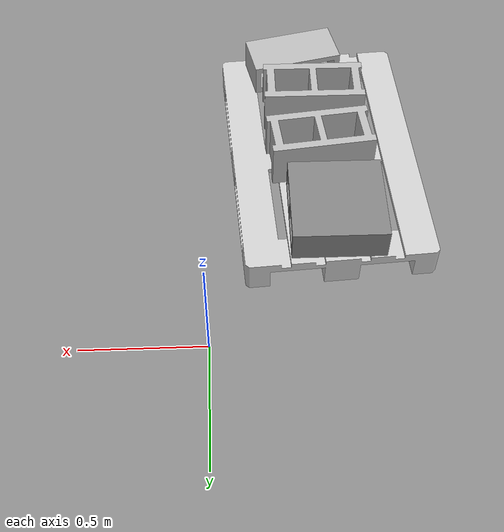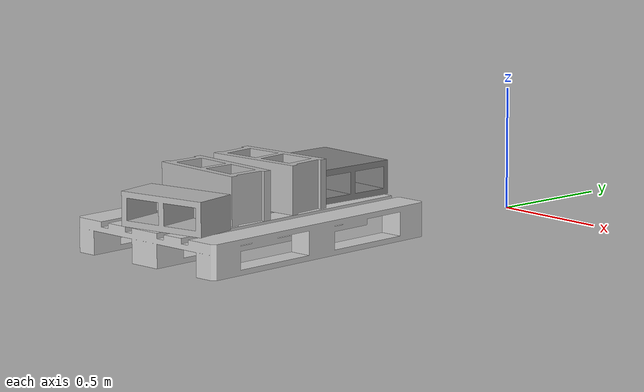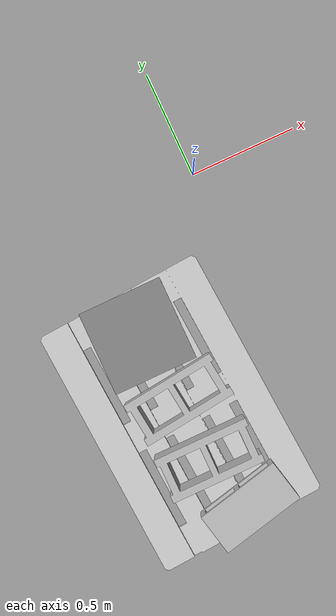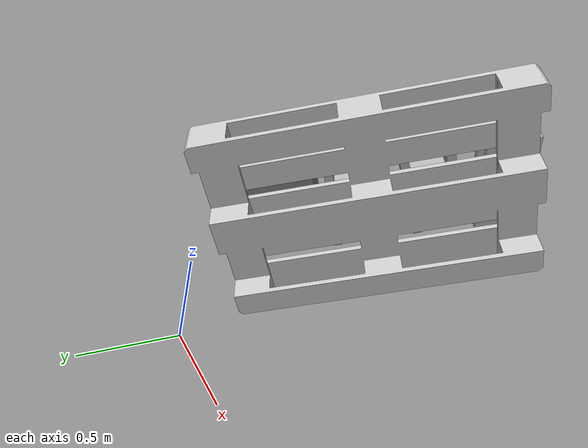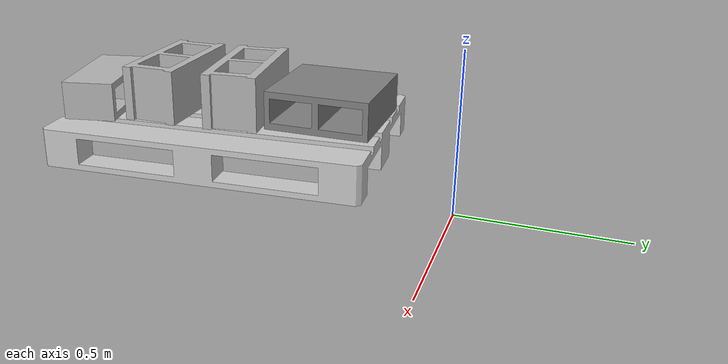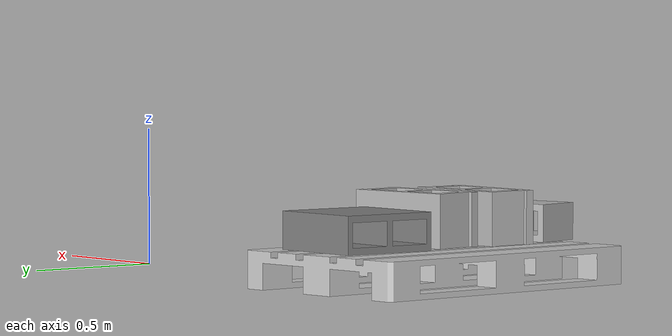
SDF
<?xml version='1.0'?>
<sdf version='1.6'>
  <model name='cinder_pallet_stash'>
    <model name='cinder_block'>
      <link name='link'>
        <inertial>
          <pose frame=''>0 0 0.1016 0 -0 0</pose>
          <mass>5</mass>
          <inertia>
            <ixx>0.028705</ixx>
            <ixy>0</ixy>
            <iyy>0.073708</iyy>
            <ixz>0</ixz>
            <iyz>0</iyz>
            <izz>0.06908</izz>
          </inertia>
        </inertial>
        <visual name='visual'>
          <geometry>
            <mesh>
              <uri>model://cinder_block/meshes/cinder_block.dae</uri>
            </mesh>
          </geometry>
        </visual>
        <collision name='left'>
          <pose frame=''>0 -0.08465 0.1016 0 -0 0</pose>
          <geometry>
            <box>
              <size>0.43495 0.0339 0.2032</size>
            </box>
          </geometry>
          <surface>
            <contact>
              <ode>
                <max_vel>0.1</max_vel>
                <min_depth>0.001</min_depth>
              </ode>
            </contact>
            <friction>
              <ode>
                <mu>1</mu>
                <mu2>1</mu2>
              </ode>
            </friction>
          </surface>
        </collision>
        <collision name='right'>
          <pose frame=''>0 0.08465 0.1016 0 -0 0</pose>
          <geometry>
            <box>
              <size>0.43495 0.0339 0.2032</size>
            </box>
          </geometry>
          <surface>
            <contact>
              <ode>
                <max_vel>0.1</max_vel>
                <min_depth>0.001</min_depth>
              </ode>
            </contact>
            <friction>
              <ode>
                <mu>1</mu>
                <mu2>1</mu2>
              </ode>
            </friction>
          </surface>
        </collision>
        <collision name='front'>
          <pose frame=''>0.18625 0 0.1016 0 -0 0</pose>
          <geometry>
            <box>
              <size>0.0339 0.1354 0.203</size>
            </box>
          </geometry>
          <surface>
            <contact>
              <ode>
                <max_vel>0.1</max_vel>
                <min_depth>0.001</min_depth>
              </ode>
            </contact>
            <friction>
              <ode>
                <mu>1</mu>
                <mu2>1</mu2>
              </ode>
            </friction>
          </surface>
        </collision>
        <collision name='middle'>
          <pose frame=''>0 0 0.1016 0 -0 0</pose>
          <geometry>
            <box>
              <size>0.0339 0.1354 0.203</size>
            </box>
          </geometry>
          <surface>
            <contact>
              <ode>
                <max_vel>0.1</max_vel>
                <min_depth>0.001</min_depth>
              </ode>
            </contact>
            <friction>
              <ode>
                <mu>1</mu>
                <mu2>1</mu2>
              </ode>
            </friction>
          </surface>
        </collision>
        <collision name='back'>
          <pose frame=''>-0.18625 0 0.1016 0 -0 0</pose>
          <geometry>
            <box>
              <size>0.0339 0.1354 0.203</size>
            </box>
          </geometry>
          <surface>
            <contact>
              <ode>
                <max_vel>0.1</max_vel>
                <min_depth>0.001</min_depth>
              </ode>
            </contact>
            <friction>
              <ode>
                <mu>1</mu>
                <mu2>1</mu2>
              </ode>
            </friction>
          </surface>
        </collision>
      </link>
      <pose frame=''>-0.471614 -1.17686 0.055152 0 -0 0</pose>
    </model>
    <model name='cinder_block_2'>
      <link name='link'>
        <inertial>
          <pose frame=''>0 0 0.071438 0 -0 0</pose>
          <mass>5</mass>
          <inertia>
            <ixx>0.06908</ixx>
            <ixy>0</ixy>
            <iyy>0.028705</iyy>
            <ixz>0</ixz>
            <iyz>0</iyz>
            <izz>0.073708</izz>
          </inertia>
        </inertial>
        <visual name='visual'>
          <geometry>
            <mesh>
              <uri>model://cinder_block_2/meshes/cinder_block.dae</uri>
            </mesh>
          </geometry>
        </visual>
        <collision name='top'>
          <pose frame=''>0 0 0.130175 0 -0 0</pose>
          <geometry>
            <box>
              <size>0.19368 0.396875 0.0254</size>
            </box>
          </geometry>
          <surface>
            <contact>
              <ode>
                <max_vel>0.1</max_vel>
                <min_depth>0.001</min_depth>
              </ode>
            </contact>
            <friction>
              <ode>
                <mu>1</mu>
                <mu2>1</mu2>
              </ode>
            </friction>
          </surface>
        </collision>
        <collision name='bottom'>
          <pose frame=''>0 0 0.0127 0 -0 0</pose>
          <geometry>
            <box>
              <size>0.19368 0.396875 0.0254</size>
            </box>
          </geometry>
          <surface>
            <contact>
              <ode>
                <max_vel>0.1</max_vel>
                <min_depth>0.001</min_depth>
              </ode>
            </contact>
            <friction>
              <ode>
                <mu>1</mu>
                <mu2>1</mu2>
              </ode>
            </friction>
          </surface>
        </collision>
        <collision name='left'>
          <pose frame=''>0 -0.185738 0.071438 0 -0 0</pose>
          <geometry>
            <box>
              <size>0.19368 0.0254 0.092075</size>
            </box>
          </geometry>
          <surface>
            <contact>
              <ode>
                <max_vel>0.1</max_vel>
                <min_depth>0.001</min_depth>
              </ode>
            </contact>
            <friction>
              <ode>
                <mu>1</mu>
                <mu2>1</mu2>
              </ode>
            </friction>
          </surface>
        </collision>
        <collision name='right'>
          <pose frame=''>0 0.185738 0.071438 0 -0 0</pose>
          <geometry>
            <box>
              <size>0.19368 0.0254 0.092075</size>
            </box>
          </geometry>
          <surface>
            <contact>
              <ode>
                <max_vel>0.1</max_vel>
                <min_depth>0.001</min_depth>
              </ode>
            </contact>
            <friction>
              <ode>
                <mu>1</mu>
                <mu2>1</mu2>
              </ode>
            </friction>
          </surface>
        </collision>
        <collision name='middle'>
          <pose frame=''>0 0 0.071438 0 -0 0</pose>
          <geometry>
            <box>
              <size>0.19368 0.0254 0.092075</size>
            </box>
          </geometry>
          <surface>
            <contact>
              <ode>
                <max_vel>0.1</max_vel>
                <min_depth>0.001</min_depth>
              </ode>
            </contact>
            <friction>
              <ode>
                <mu>1</mu>
                <mu2>1</mu2>
              </ode>
            </friction>
          </surface>
        </collision>
      </link>
      <pose frame=''>-0.396834 -1.44749 0.052715 0 0 -1.35211</pose>
    </model>
    <model name='cinder_block_clone'>
      <link name='link'>
        <inertial>
          <pose frame=''>0 0 0.1016 0 -0 0</pose>
          <mass>5</mass>
          <inertia>
            <ixx>0.028705</ixx>
            <ixy>0</ixy>
            <iyy>0.073708</iyy>
            <ixz>0</ixz>
            <iyz>0</iyz>
            <izz>0.06908</izz>
          </inertia>
        </inertial>
        <visual name='visual'>
          <geometry>
            <mesh>
              <uri>model://cinder_block/meshes/cinder_block.dae</uri>
            </mesh>
          </geometry>
        </visual>
        <collision name='left'>
          <pose frame=''>0 -0.08465 0.1016 0 -0 0</pose>
          <geometry>
            <box>
              <size>0.43495 0.0339 0.2032</size>
            </box>
          </geometry>
          <surface>
            <contact>
              <ode>
                <max_vel>0.1</max_vel>
                <min_depth>0.001</min_depth>
              </ode>
            </contact>
            <friction>
              <ode>
                <mu>1</mu>
                <mu2>1</mu2>
              </ode>
            </friction>
          </surface>
        </collision>
        <collision name='right'>
          <pose frame=''>0 0.08465 0.1016 0 -0 0</pose>
          <geometry>
            <box>
              <size>0.43495 0.0339 0.2032</size>
            </box>
          </geometry>
          <surface>
            <contact>
              <ode>
                <max_vel>0.1</max_vel>
                <min_depth>0.001</min_depth>
              </ode>
            </contact>
            <friction>
              <ode>
                <mu>1</mu>
                <mu2>1</mu2>
              </ode>
            </friction>
          </surface>
        </collision>
        <collision name='front'>
          <pose frame=''>0.18625 0 0.1016 0 -0 0</pose>
          <geometry>
            <box>
              <size>0.0339 0.1354 0.203</size>
            </box>
          </geometry>
          <surface>
            <contact>
              <ode>
                <max_vel>0.1</max_vel>
                <min_depth>0.001</min_depth>
              </ode>
            </contact>
            <friction>
              <ode>
                <mu>1</mu>
                <mu2>1</mu2>
              </ode>
            </friction>
          </surface>
        </collision>
        <collision name='middle'>
          <pose frame=''>0 0 0.1016 0 -0 0</pose>
          <geometry>
            <box>
              <size>0.0339 0.1354 0.203</size>
            </box>
          </geometry>
          <surface>
            <contact>
              <ode>
                <max_vel>0.1</max_vel>
                <min_depth>0.001</min_depth>
              </ode>
            </contact>
            <friction>
              <ode>
                <mu>1</mu>
                <mu2>1</mu2>
              </ode>
            </friction>
          </surface>
        </collision>
        <collision name='back'>
          <pose frame=''>-0.18625 0 0.1016 0 -0 0</pose>
          <geometry>
            <box>
              <size>0.0339 0.1354 0.203</size>
            </box>
          </geometry>
          <surface>
            <contact>
              <ode>
                <max_vel>0.1</max_vel>
                <min_depth>0.001</min_depth>
              </ode>
            </contact>
            <friction>
              <ode>
                <mu>1</mu>
                <mu2>1</mu2>
              </ode>
            </friction>
          </surface>
        </collision>
      </link>
      <pose frame=''>-0.480578 -0.883001 0.058555 0 -0 0.11519</pose>
    </model>
    <model name='cinder_block_wide'>
      <link name='link'>
        <inertial>
          <pose frame=''>0 0 0.071438 0 -0 0</pose>
          <mass>5</mass>
          <inertia>
            <ixx>0.0681466</ixx>
            <ixy>0</ixy>
            <iyy>0.0681466</iyy>
            <ixz>0</ixz>
            <iyz>0</iyz>
            <izz>0.124808</izz>
          </inertia>
        </inertial>
        <visual name='visual'>
          <geometry>
            <mesh>
              <uri>model://cinder_block_wide/meshes/cinder_block_wide.dae</uri>
            </mesh>
          </geometry>
        </visual>
        <collision name='top'>
          <pose frame=''>0 0 0.130175 0 -0 0</pose>
          <geometry>
            <box>
              <size>0.387354 0.387354 0.0254</size>
            </box>
          </geometry>
          <surface>
            <contact>
              <ode>
                <max_vel>0.1</max_vel>
                <min_depth>0.001</min_depth>
              </ode>
            </contact>
            <friction>
              <ode>
                <mu>1</mu>
                <mu2>1</mu2>
              </ode>
            </friction>
          </surface>
        </collision>
        <collision name='bottom'>
          <pose frame=''>0 0 0.0127 0 -0 0</pose>
          <geometry>
            <box>
              <size>0.387354 0.387354 0.0254</size>
            </box>
          </geometry>
          <surface>
            <contact>
              <ode>
                <max_vel>0.1</max_vel>
                <min_depth>0.001</min_depth>
              </ode>
            </contact>
            <friction>
              <ode>
                <mu>1</mu>
                <mu2>1</mu2>
              </ode>
            </friction>
          </surface>
        </collision>
        <collision name='left'>
          <pose frame=''>0 -0.183355 0.071438 0 -0 0</pose>
          <geometry>
            <box>
              <size>0.387354 0.020643 0.092075</size>
            </box>
          </geometry>
          <surface>
            <contact>
              <ode>
                <max_vel>0.1</max_vel>
                <min_depth>0.001</min_depth>
              </ode>
            </contact>
            <friction>
              <ode>
                <mu>1</mu>
                <mu2>1</mu2>
              </ode>
            </friction>
          </surface>
        </collision>
        <collision name='right'>
          <pose frame=''>0 0.183355 0.071438 0 -0 0</pose>
          <geometry>
            <box>
              <size>0.387354 0.020643 0.092075</size>
            </box>
          </geometry>
          <surface>
            <contact>
              <ode>
                <max_vel>0.1</max_vel>
                <min_depth>0.001</min_depth>
              </ode>
            </contact>
            <friction>
              <ode>
                <mu>1</mu>
                <mu2>1</mu2>
              </ode>
            </friction>
          </surface>
        </collision>
        <collision name='middle'>
          <pose frame=''>0 0 0.071438 0 -0 0</pose>
          <geometry>
            <box>
              <size>0.387354 0.0254 0.092075</size>
            </box>
          </geometry>
          <surface>
            <contact>
              <ode>
                <max_vel>0.1</max_vel>
                <min_depth>0.001</min_depth>
              </ode>
            </contact>
            <friction>
              <ode>
                <mu>1</mu>
                <mu2>1</mu2>
              </ode>
            </friction>
          </surface>
        </collision>
      </link>
      <pose frame=''>-0.528129 -0.558546 0.056719 0 -0 0</pose>
    </model>
    <model name='euro_pallet_0'>
      <link name='link'>
        <pose frame=''>0 0 0 0 -0 0</pose>
        <inertial>
          <mass>20</mass>
          <inertia>
            <ixx>2.43</ixx>
            <ixy>0</ixy>
            <ixz>0</ixz>
            <iyy>1.1</iyy>
            <iyz>0</iyz>
            <izz>3.47</izz>
          </inertia>
        </inertial>
        <collision name='collision'>
          <pose frame=''>0 0 0.05 0 -0 0</pose>
          <geometry>
            <mesh>
              <uri>model://euro_pallet/meshes/pallet.dae</uri>
              <scale>0.1 0.1 0.1</scale>
            </mesh>
          </geometry>
        </collision>
        <visual name='visual'>
          <pose frame=''>0 0 0.05 0 -0 0</pose>
          <geometry>
            <mesh>
              <uri>model://euro_pallet/meshes/pallet.dae</uri>
              <scale>0.1 0.1 0.1</scale>
            </mesh>
          </geometry>
        </visual>
      </link>
      <pose frame=''>-0.50671 -0.954559 -0.026262 0 -0 0.06499</pose>
    </model>
    <static>0</static>
    <allow_auto_disable>1</allow_auto_disable>
  </model>
</sdf>
